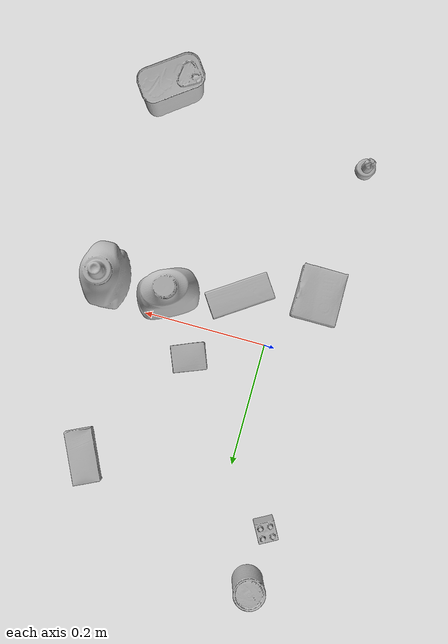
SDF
<sdf version="1.4">
  <world name="default">
    <light name="light1" type="point">
      <pose>0 0 1 0 0 0</pose>
      <diffuse>3 3 3 1</diffuse>
      <specular>3 3 3 1</specular>
    </light>
    <light name="light2" type="point">
      <pose>0 0.5 2 0 0 0</pose>
      <diffuse>1 1 1 1</diffuse>
      <specular>1 1 1 1</specular>
    </light>
    <light name="light3" type="point">
      <pose>0 0.5 2 0 0 0</pose>
      <diffuse>3 3 3 1</diffuse>
      <specular>3 3 3 1</specular>
    </light>
    <scene>
      <ambient>0.7 0.7 0.7</ambient>
    </scene>
    <model name="bottle1">
      <link name="link_bottle1">
        <collision name="default">
          <geometry>
            <mesh>
              <uri>model://bleach_cleanser/collision_meshes/collision.obj</uri>
              <scale>1.0 1.0 1.0</scale>
            </mesh>
          </geometry>
          <surface>
            <friction>
              <ode>
                <mu>0.5</mu>
                <mu2>0.5</mu2>
              </ode>
            </friction>
          <contact>
        <ode>
            <max_vel>0</max_vel>
            <min_depth>0.0001</min_depth>
            <kp>1e8</kp>
        </ode>
    </contact></surface>
        </collision>
        <visual name="default">
          <geometry>
            <mesh>
              <uri>model://bleach_cleanser/visual_meshes/visual.dae</uri>
              <scale>1.0 1.0 1.0</scale>
            </mesh>
          </geometry>
        </visual>
        <inertial>
          <mass>1.578364610671997</mass>
          <pose>0.00012193182919872925 0.003783882362768054 -0.024421613663434982 -0.07381669869228723 0.000420116582496686 -0.006875050642452563</pose>
          <inertia>
            <ixx>0.00768213</ixx>
            <iyy>0.0071586203</iyy>
            <izz>0.0013134446</izz>
            <ixy>0</ixy>
            <ixz>0</ixz>
            <iyz>0</iyz>
          </inertia>
        </inertial>
      </link>
      <pose>0.1696140170097351 -0.03634761646389961 0.12578417360782623 -0.00019987920597945441 1.6619968436972326e-05 2.0363081147418667</pose>
    </model>
    <model name="bottle2">
      <link name="link_bottle2">
        <collision name="default">
          <geometry>
            <mesh>
              <uri>model://mustard_bottle/collision_meshes/collision.obj</uri>
              <scale>1.0 1.0 1.0</scale>
            </mesh>
          </geometry>
          <surface>
            <friction>
              <ode>
                <mu>0.5</mu>
                <mu2>0.5</mu2>
              </ode>
            </friction>
          <contact>
        <ode>
            <max_vel>0</max_vel>
            <min_depth>0.0001</min_depth>
            <kp>1e8</kp>
        </ode>
    </contact></surface>
        </collision>
        <visual name="default">
          <geometry>
            <mesh>
              <uri>model://mustard_bottle/visual_meshes/visual.dae</uri>
              <scale>1.0 1.0 1.0</scale>
            </mesh>
          </geometry>
        </visual>
        <inertial>
          <mass>0.5896905064582825</mass>
          <pose>0.000503245391882956 -0.00015647403779439628 -0.0174757931381464 0.00041823284967905286 0.0009465779461724547 0.024853724225743102</pose>
          <inertia>
            <ixx>0.00163749</ixx>
            <iyy>0.0014367587</iyy>
            <izz>0.00043156123</izz>
            <ixy>0</ixy>
            <ixz>0</ixz>
            <iyz>0</iyz>
          </inertia>
        </inertial>
      </link>
      <pose>0.2651231288909912 -0.0395440012216568 0.09583087265491486 -0.012050344521061825 -0.004889922004576454 -3.06066713150801</pose>
    </model>
    <model name="toy1">
      <link name="link_toy1">
        <collision name="default">
          <geometry>
            <mesh>
              <uri>model://b_lego_duplo/collision_meshes/collision.obj</uri>
              <scale>1.0 1.0 1.0</scale>
            </mesh>
          </geometry>
          <surface>
            <friction>
              <ode>
                <mu>0.5</mu>
                <mu2>0.5</mu2>
              </ode>
            </friction>
          <contact>
        <ode>
            <max_vel>0</max_vel>
            <min_depth>0.0001</min_depth>
            <kp>1e8</kp>
        </ode>
    </contact></surface>
        </collision>
        <visual name="default">
          <geometry>
            <mesh>
              <uri>model://b_lego_duplo/visual_meshes/visual.dae</uri>
              <scale>1.0 1.0 1.0</scale>
            </mesh>
          </geometry>
        </visual>
        <inertial>
          <mass>0.04927889630198479</mass>
          <pose>-0.00011053016351070255 -9.152428901870735e-06 0.0019294293597340584 -0.03749545918935276 -0.026353596882306905 0.4519115393215097</pose>
          <inertia>
            <ixx>1.0085294e-05</ixx>
            <iyy>1.015309e-05</iyy>
            <izz>8.985672e-06</izz>
            <ixy>0</ixy>
            <ixz>0</ixz>
            <iyz>0</iyz>
          </inertia>
        </inertial>
      </link>
      <pose>-0.078008271753788 0.28239816427230835 0.021814962849020958 3.6037831963111746e-06 1.0552639678223509e-05 0.502337533465685</pose>
    </model>
    <model name="toy2">
      <link name="link_toy2">
        <collision name="default">
          <geometry>
            <mesh>
              <uri>model://d_toy_airplane/collision_meshes/collision.obj</uri>
              <scale>1.0 1.0 1.0</scale>
            </mesh>
          </geometry>
          <surface>
            <friction>
              <ode>
                <mu>0.5</mu>
                <mu2>0.5</mu2>
              </ode>
            </friction>
          <contact>
        <ode>
            <max_vel>0</max_vel>
            <min_depth>0.0001</min_depth>
            <kp>1e8</kp>
        </ode>
    </contact></surface>
        </collision>
        <visual name="default">
          <geometry>
            <mesh>
              <uri>model://d_toy_airplane/visual_meshes/visual.dae</uri>
              <scale>1.0 1.0 1.0</scale>
            </mesh>
          </geometry>
        </visual>
        <inertial>
          <mass>0.023543989285826683</mass>
          <pose>9.41029647947289e-05 -5.8093268307857215e-05 -0.011728093028068542 0.0002670074791080515 0.004678977428991067 0.5194709842729006</pose>
          <inertia>
            <ixx>7.058034e-06</ixx>
            <iyy>7.063356e-06</iyy>
            <izz>2.1308651e-06</izz>
            <ixy>0</ixy>
            <ixz>0</ixz>
            <iyz>0</iyz>
          </inertia>
        </inertial>
      </link>
      <pose>-0.08159927278757095 -0.3160678744316101 0.03334032744169235 -0.00036114522327168597 -0.0001988363342831506 -1.946490207407811</pose>
    </model>
    <model name="can1">
      <link name="link_can1">
        <collision name="default">
          <geometry>
            <mesh>
              <uri>model://master_chef_can/collision_meshes/collision.obj</uri>
              <scale>0.5 0.5 0.5</scale>
            </mesh>
          </geometry>
          <surface>
            <friction>
              <ode>
                <mu>0.5</mu>
                <mu2>0.5</mu2>
              </ode>
            </friction>
          <contact>
        <ode>
            <max_vel>0</max_vel>
            <min_depth>0.0001</min_depth>
            <kp>1e8</kp>
        </ode>
    </contact></surface>
        </collision>
        <visual name="default">
          <geometry>
            <mesh>
              <uri>model://master_chef_can/visual_meshes/visual.dae</uri>
              <scale>0.5 0.5 0.5</scale>
            </mesh>
          </geometry>
        </visual>
        <inertial>
          <mass>0.13489052653312683</mass>
          <pose>-4.6619643399026245e-05 1.392684936263322e-07 -5.080000119050965e-05 -0.0017995055981966167 0.0006479432683086387 -0.6102521024359563</pose>
          <inertia>
            <ixx>7.9171594e-05</ixx>
            <iyy>7.85889e-05</iyy>
            <izz>4.3748354e-05</izz>
            <ixy>0</ixy>
            <ixz>0</ixz>
            <iyz>0</iyz>
          </inertia>
        </inertial>
      </link>
      <pose>-0.07374297827482224 0.3740047216415405 0.035301998257637024 -1.707632761991539e-06 -8.976847529015161e-07 3.077083521717989</pose>
    </model>
    <model name="can2">
      <link name="link_can2">
        <collision name="default">
          <geometry>
            <mesh>
              <uri>model://potted_meat_can/collision_meshes/collision.obj</uri>
              <scale>1.0 1.0 1.0</scale>
            </mesh>
          </geometry>
          <surface>
            <friction>
              <ode>
                <mu>0.5</mu>
                <mu2>0.5</mu2>
              </ode>
            </friction>
          <contact>
        <ode>
            <max_vel>0</max_vel>
            <min_depth>0.0001</min_depth>
            <kp>1e8</kp>
        </ode>
    </contact></surface>
        </collision>
        <visual name="default">
          <geometry>
            <mesh>
              <uri>model://potted_meat_can/visual_meshes/visual.dae</uri>
              <scale>1.0 1.0 1.0</scale>
            </mesh>
          </geometry>
        </visual>
        <inertial>
          <mass>0.4512253701686859</mass>
          <pose>0.00022888150124344975 -5.9891150158364326e-05 -0.0006367433816194534 -0.028093371406289817 -0.007232609295346345 0.015406271951796056</pose>
          <inertia>
            <ixx>0.00058045425</ixx>
            <iyy>0.00035267006</iyy>
            <izz>0.00042216998</izz>
            <ixy>0</ixy>
            <ixz>0</ixz>
            <iyz>0</iyz>
          </inertia>
        </inertial>
      </link>
      <pose>0.24856936931610107 -0.35319507122039795 0.042128000408411026 4.2402184826323876e-08 -5.244320705433641e-07 -0.9508021127139518</pose>
    </model>
    <model name="box1">
      <link name="link_box1">
        <collision name="default">
          <geometry>
            <mesh>
              <uri>model://pudding_box/collision_meshes/collision.obj</uri>
              <scale>0.5 0.5 0.5</scale>
            </mesh>
          </geometry>
          <surface>
            <friction>
              <ode>
                <mu>0.5</mu>
                <mu2>0.5</mu2>
              </ode>
            </friction>
          <contact>
        <ode>
            <max_vel>0</max_vel>
            <min_depth>0.0001</min_depth>
            <kp>1e8</kp>
        </ode>
    </contact></surface>
        </collision>
        <visual name="default">
          <geometry>
            <mesh>
              <uri>model://pudding_box/visual_meshes/visual.dae</uri>
              <scale>0.5 0.5 0.5</scale>
            </mesh>
          </geometry>
        </visual>
        <inertial>
          <mass>0.02510015107691288</mass>
          <pose>0.00024474109522998333 0.0004033942532259971 -0.0002594413817860186 0.005213101332996491 -0.0066037987089797995 0.020079823298230236</pose>
          <inertia>
            <ixx>7.093607e-06</ixx>
            <iyy>4.7726294e-06</iyy>
            <izz>1.04755645e-05</izz>
            <ixy>0</ixy>
            <ixz>0</ixz>
            <iyz>0</iyz>
          </inertia>
        </inertial>
      </link>
      <pose>0.1125708818435669 0.050539370626211166 0.009862903505563736 0.022348509654932115 -0.011391767267474762 -1.1946927114816617</pose>
    </model>
    <model name="box2">
      <link name="link_box2">
        <collision name="default">
          <geometry>
            <mesh>
              <uri>model://gelatin_box/collision_meshes/collision.obj</uri>
              <scale>1.0 1.0 1.0</scale>
            </mesh>
          </geometry>
          <surface>
            <friction>
              <ode>
                <mu>0.5</mu>
                <mu2>0.5</mu2>
              </ode>
            </friction>
          <contact>
        <ode>
            <max_vel>0</max_vel>
            <min_depth>0.0001</min_depth>
            <kp>1e8</kp>
        </ode>
    </contact></surface>
        </collision>
        <visual name="default">
          <geometry>
            <mesh>
              <uri>model://gelatin_box/visual_meshes/visual.dae</uri>
              <scale>1.0 1.0 1.0</scale>
            </mesh>
          </geometry>
        </visual>
        <inertial>
          <mass>0.2452477514743805</mass>
          <pose>0.000431961816502735 0.00011156871187267825 -0.0003640321083366871 -0.0010503720803081407 -0.004755818225601415 0.01644055574590794</pose>
          <inertia>
            <ixx>0.0001731249</ixx>
            <iyy>0.0001236622</iyy>
            <izz>0.00026353472</izz>
            <ixy>0</ixy>
            <ixz>0</ixz>
            <iyz>0</iyz>
          </inertia>
        </inertial>
      </link>
      <pose>-0.06251123547554016 -0.10037308186292648 0.01516831386834383 0.005596950061546145 -0.007303986604012387 -0.006469539688633251</pose>
    </model>
    <model name="box3">
      <link name="link_box3">
        <collision name="default">
          <geometry>
            <mesh>
              <uri>model://sugar_box/collision_meshes/collision.obj</uri>
              <scale>0.5 0.5 0.5</scale>
            </mesh>
          </geometry>
          <surface>
            <friction>
              <ode>
                <mu>0.5</mu>
                <mu2>0.5</mu2>
              </ode>
            </friction>
          <contact>
        <ode>
            <max_vel>0</max_vel>
            <min_depth>0.0001</min_depth>
            <kp>1e8</kp>
        </ode>
    </contact></surface>
        </collision>
        <visual name="default">
          <geometry>
            <mesh>
              <uri>model://sugar_box/visual_meshes/visual.dae</uri>
              <scale>0.5 0.5 0.5</scale>
            </mesh>
          </geometry>
        </visual>
        <inertial>
          <mass>0.12277840822935104</mass>
          <pose>0.0005171863595023751 1.9245549992774613e-05 -0.00018182402709499002 -0.0004046257474220826 0.0010506635214397083 0.0026153787892127145</pose>
          <inertia>
            <ixx>2.5574656e-05</ixx>
            <iyy>8.2662555e-05</iyy>
            <izz>9.895694e-05</izz>
            <ixy>0</ixy>
            <ixz>0</ixz>
            <iyz>0</iyz>
          </inertia>
        </inertial>
      </link>
      <pose>0.23494373261928558 0.2480439394712448 0.011399303562939167 0.0007756333929213153 -0.023432626565439197 2.0100519799734347</pose>
    </model>
    <model name="box4">
      <link name="link_box4">
        <collision name="default">
          <geometry>
            <mesh>
              <uri>model://wood_block/collision_meshes/collision.obj</uri>
              <scale>0.5 0.5 0.5</scale>
            </mesh>
          </geometry>
          <surface>
            <friction>
              <ode>
                <mu>0.5</mu>
                <mu2>0.5</mu2>
              </ode>
            </friction>
          <contact>
        <ode>
            <max_vel>0</max_vel>
            <min_depth>0.0001</min_depth>
            <kp>1e8</kp>
        </ode>
    </contact></surface>
        </collision>
        <visual name="default">
          <geometry>
            <mesh>
              <uri>model://wood_block/visual_meshes/visual.dae</uri>
              <scale>0.5 0.5 0.5</scale>
            </mesh>
          </geometry>
        </visual>
        <inertial>
          <mass>0.2967980206012726</mass>
          <pose>-2.9066577553749084e-06 -0.00028540470520965755 0.00013204291462898254 -0.05220902064674581 -0.005192696668457315 -0.006861378272965977</pose>
          <inertia>
            <ixx>9.929016e-05</ixx>
            <iyy>0.00031365763</iyy>
            <izz>0.00031248436</izz>
            <ixy>0</ixy>
            <ixz>0</ixz>
            <iyz>0</iyz>
          </inertia>
        </inertial>
      </link>
      <pose>0.0602213591337204 -0.06516969203948975 0.02262926660478115 -0.005208421704105195 0.005718731304493881 0.5975938399463883</pose>
    </model>
  <physics type="ode">
      <max_contacts>50</max_contacts>
      <ode>
        <solver>
          <type>quick</type>
          <iters>75</iters>
        </solver>
        <constraints>
          <contact_max_correcting_vel>0</contact_max_correcting_vel>
          <contact_surface_layer>0</contact_surface_layer>
        </constraints>
      </ode>
    </physics></world>
</sdf>
